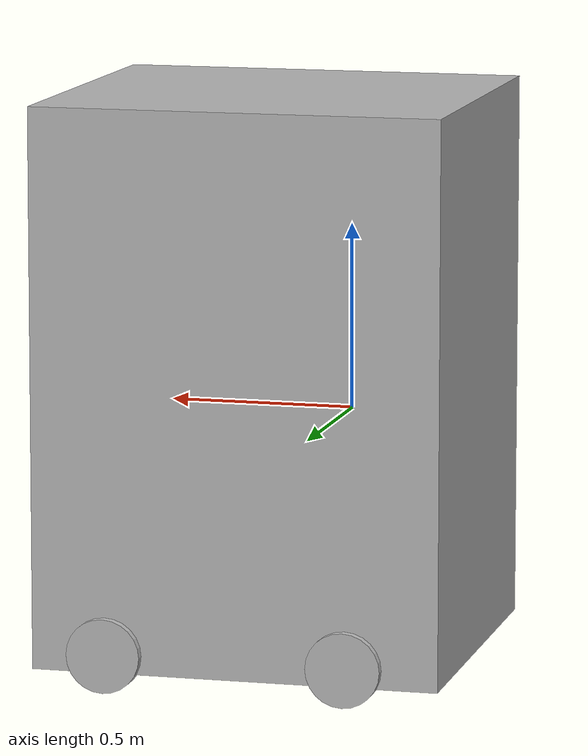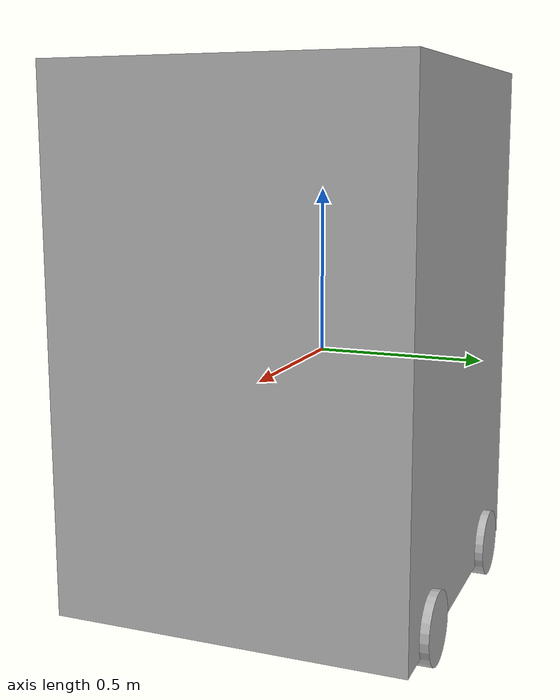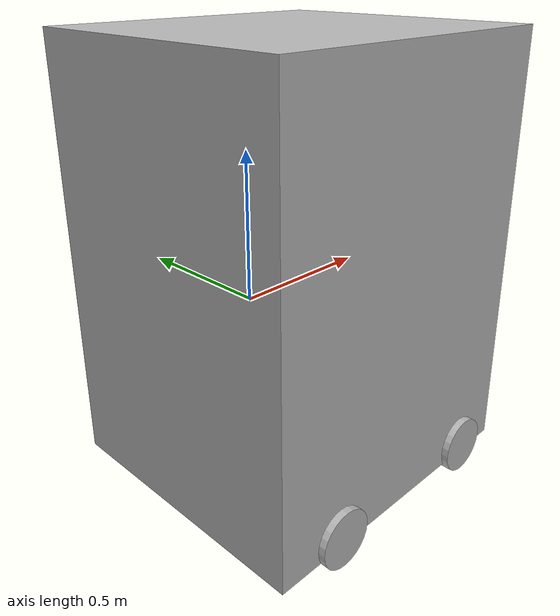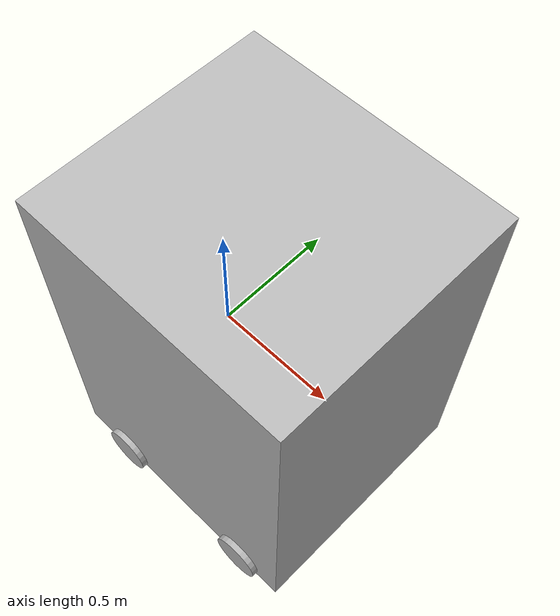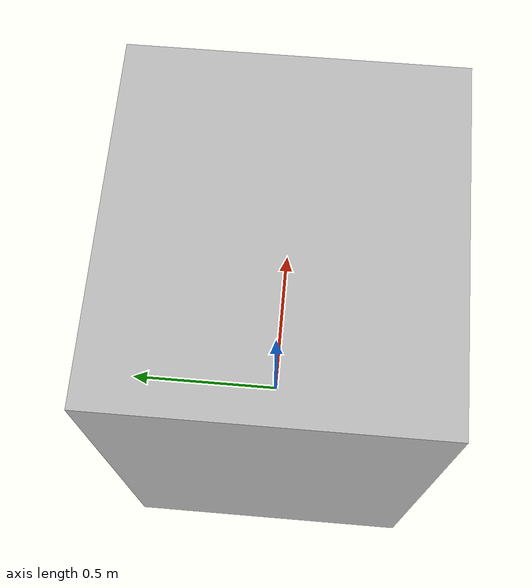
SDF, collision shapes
<?xml version='1.0'?>
<sdf version='1.4'>
  <model name="techtrix_robot">
  	<static>false</static>

  	<!-- We create the initial box of the robot -->
	 	<link name='chassis'>
	    <pose>0 0 .1 0 0 0</pose>

	    <collision name='collision'>
	    	<pose>0.2 0 0 0 0 0</pose>

	      <geometry>
	        <box>
	          <size>1.1 1 1.5</size>
	        </box>
	      </geometry>
	    </collision>

     <visual name='visual'>
     		<!-- Somehow the model is also way too high, so we move it down -->
     		<pose>0 0 -1.45 0 0 0</pose>

       <geometry>
         <mesh>
         		<uri>model://techtrix_robot/meshes/model.dae</uri>
         		<!-- The original model is too big -->
         		<scale>0.2 0.2 0.2</scale>
         </mesh>
       </geometry>
     </visual>

     <!-- Add the caster -->

     <collision name='caster_collision'>
			   <pose>0.25 0 -0.7 0 0 0</pose>
			   <geometry>
			       <sphere>
			       <radius>.05</radius>
			     </sphere>
			   </geometry>

			   <surface>
			     <friction>
			       <ode>
			         <mu>0</mu>
			         <mu2>0</mu2>
			         <slip1>1.0</slip1>
			         <slip2>1.0</slip2>
			       </ode>
			     </friction>
			   </surface>
     </collision>

     <!-- The caster is only to keep equlibrium in the model, so we don't show it -->

	 	</link>

	 	<!-- Add the wheels -->

	 	<link name="left_back_wheel">
      <pose>-0.1 0.5 -0.6 0 1.5707 1.5707</pose>
      <collision name="collision">
        <geometry>
          <cylinder>
            <radius>.1</radius>
            <length>.05</length>
          </cylinder>
        </geometry>
      </collision>
    </link>

			<link name="left_front_wheel">
      <pose>0.55 0.5 -0.6 0 1.5707 1.5707</pose>
      <collision name="collision">
        <geometry>
          <cylinder>
            <radius>.1</radius>
            <length>.05</length>
          </cylinder>
        </geometry>
      </collision>
    </link>

    <!-- We can make a right wheel by copying the left wheel, and adjusting the wheel link's pose -->

    <link name="right_back_wheel">
      <pose>-0.1 -0.5 -0.6 0 1.5707 1.5707</pose>
      <collision name="collision">
        <geometry>
          <cylinder>
            <radius>.1</radius>
            <length>.05</length>
          </cylinder>
        </geometry>
      </collision>
    </link>

    <link name="right_front_wheel">
      <pose>0.55 -0.5 -0.6 0 1.5707 1.5707</pose>
      <collision name="collision">
        <geometry>
          <cylinder>
            <radius>.1</radius>
            <length>.05</length>
          </cylinder>
        </geometry>
      </collision>
    </link>

    <!-- Add four hinge joints for the left and right wheels -->

    <joint type="revolute" name="left_back_wheel_hinge">
	    <pose>0 0 -0.03 0 0 0</pose>
	    <child>left_back_wheel</child>
	    <parent>chassis</parent>
	    <axis>
	      <xyz>0 1 0</xyz>
	    </axis>
    </joint>

    <joint type="revolute" name="left_front_wheel_hinge">
	    <pose>0 0 -0.03 0 0 0</pose>
	    <child>left_front_wheel</child>
	    <parent>chassis</parent>
	    <axis>
	      <xyz>0 1 0</xyz>
	    </axis>
    </joint>

    <joint type="revolute" name="right_back_wheel_hinge">
     <pose>0 0 0.03 0 0 0</pose>
     <child>right_back_wheel</child>
     <parent>chassis</parent>
     <axis>
       <xyz>0 1 0</xyz>
     </axis>
    </joint>

    <joint type="revolute" name="right_front_wheel_hinge">
     <pose>0 0 0.03 0 0 0</pose>
     <child>right_front_wheel</child>
     <parent>chassis</parent>
     <axis>
       <xyz>0 1 0</xyz>
     </axis>
    </joint>
  </model>
</sdf>
